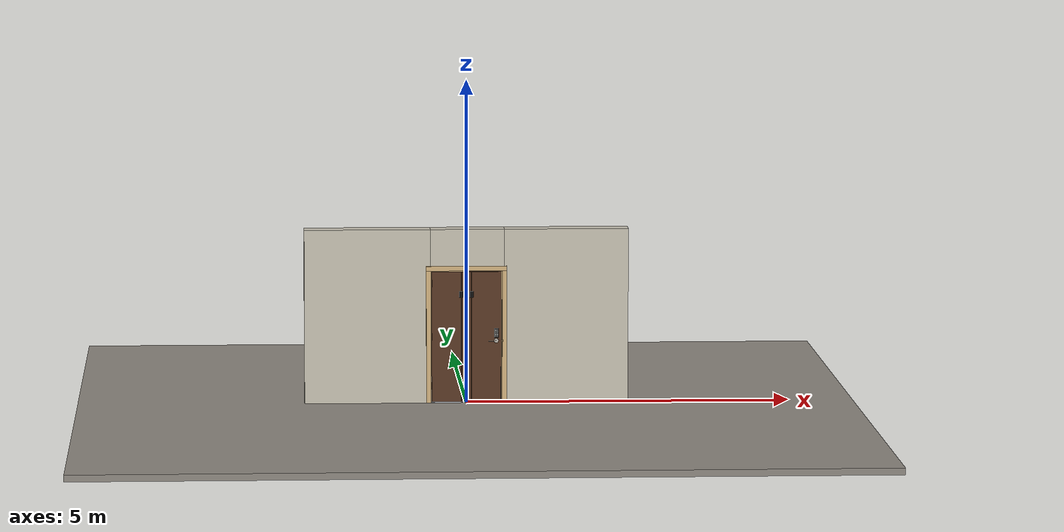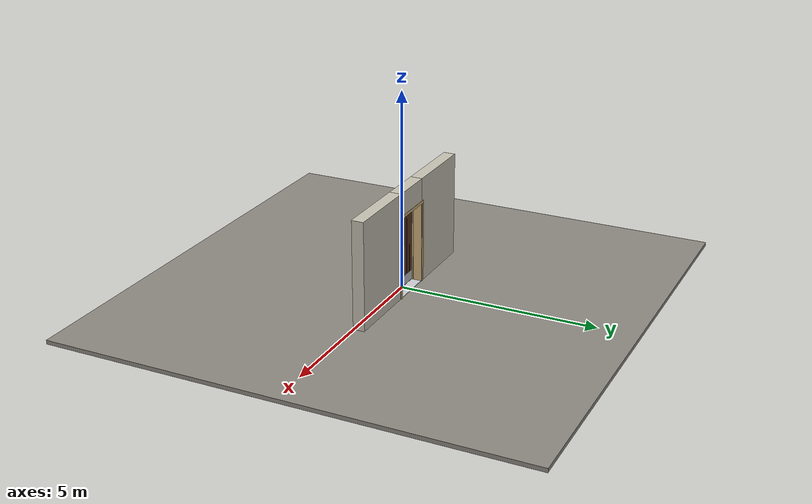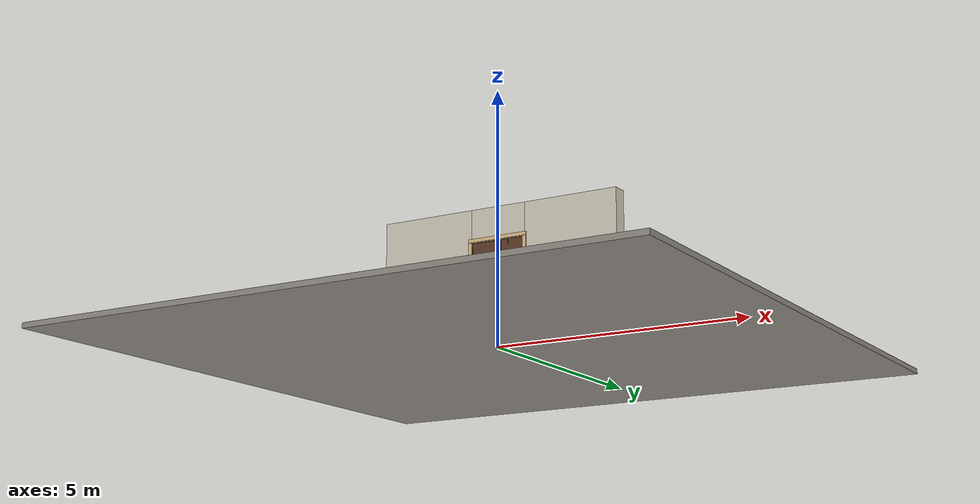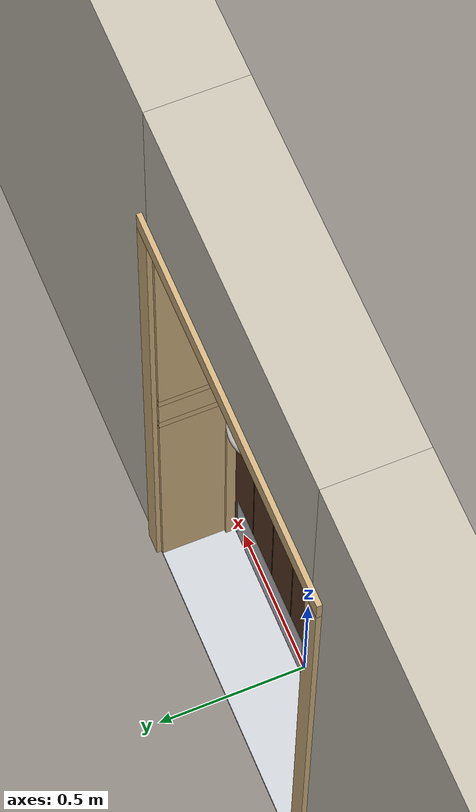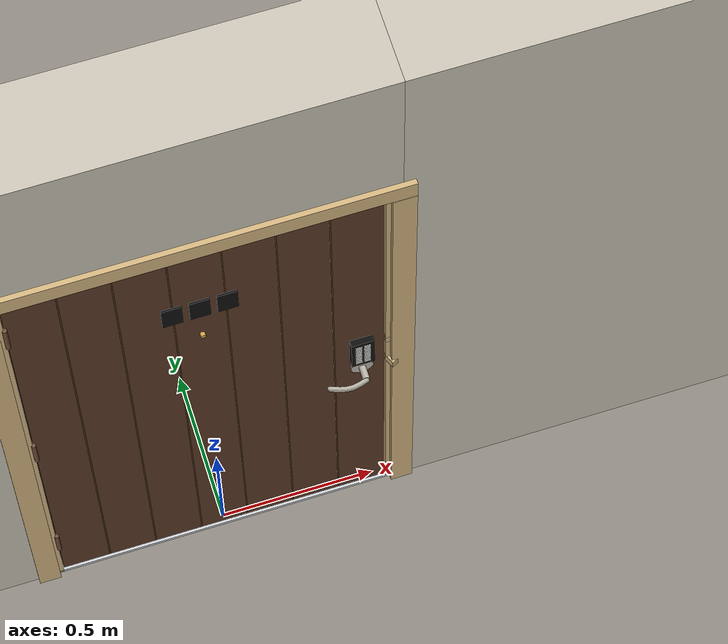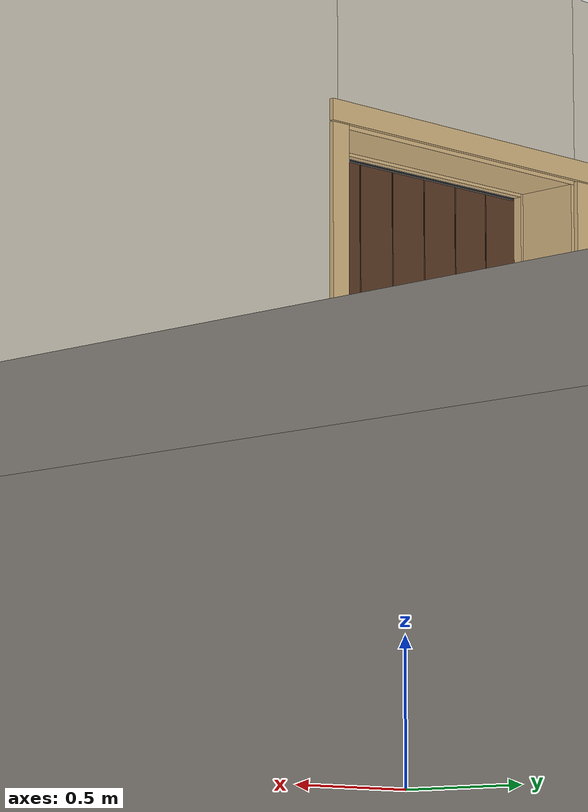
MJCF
<?xml version="1.0" ?>
<mujoco model="db0086_swing_single_full">
  <compiler angle="radian" meshdir="../../hardware" texturedir="../../textures" autolimits="true" inertiafromgeom="false"/>
  <option timestep="0.002" integrator="implicitfast" cone="elliptic" impratio="10" noslip_iterations="3">
    <flag multiccd="enable"/>
  </option>
  <size memory="16M"/>
  <default>
    <geom condim="4" solref="0.005 1" solimp="0.95 0.99 0.001"/>
    <joint solreflimit="0.005 1" solimplimit="0.95 0.99 0.001"/>
    <tendon solreflimit="0.005 1"/>
    <equality solref="0.002 1"/>
  </default>
  <visual>
    <headlight ambient="0.4 0.4 0.4" diffuse="0.7 0.7 0.7" specular="0.2 0.2 0.2"/>
    <quality shadowsize="4096"/>
    <map znear="0.01" zfar="60"/>
  </visual>
  <asset>
    <mesh name="hinge_e22b26c0c1" file="hinge_e22b26c0c1.obj"/>
    <mesh name="hinge_jamb_e1d088f8dc" file="hinge_jamb_e1d088f8dc.obj"/>
    <mesh name="house_numbers_ad0a8e8be0" file="house_numbers_ad0a8e8be0.obj"/>
    <mesh name="keypad_body_3b2d063948" file="keypad_body_3b2d063948.obj"/>
    <mesh name="lever_a61139b160" file="lever_a61139b160.obj"/>
    <mesh name="peephole_f829311a59" file="peephole_f829311a59.obj"/>
    <mesh name="thumbturn_eb5c9899a3" file="thumbturn_eb5c9899a3.obj"/>
    <material name="mat_floor" rgba="0.55 0.53 0.5 1" specular="0.2" shininess="0.15" reflectance="0"/>
    <material name="mat_wall" rgba="0.78 0.76 0.7 1" specular="0.2" shininess="0.1" reflectance="0"/>
    <material name="mat_leaf" rgba="0.35 0.22 0.14 1" specular="0.2" shininess="0.64" reflectance="0"/>
    <material name="mat_leaf_brace" rgba="0.315 0.198 0.126 1" specular="0.2" shininess="0.2" reflectance="0"/>
    <material name="mat_hinge" rgba="0.45 0.3 0.22 1" specular="0.5" shininess="0.1" reflectance="0.2"/>
    <material name="mat_op_nickel_satin" rgba="0.72 0.7 0.66 1" specular="0.8" shininess="0.65" reflectance="0.4"/>
    <material name="mat_trim" rgba="0.85 0.66 0.3 1" specular="0.8" shininess="0.75" reflectance="0.4"/>
    <material name="mat_keypad" rgba="0.05 0.05 0.05 1" specular="0.38" shininess="0.3" reflectance="0.12"/>
    <material name="mat_key" rgba="0.85 0.85 0.82 1" specular="0.2" shininess="0.5" reflectance="0"/>
    <material name="mat_bolt" rgba="0.85 0.66 0.3 1" specular="0.8" shininess="0.75" reflectance="0.4"/>
    <material name="mat_deadbolt" rgba="0.85 0.66 0.3 1" specular="0.8" shininess="0.75" reflectance="0.4"/>
    <material name="mat_frame" rgba="0.82 0.7 0.5 1" specular="0.2" shininess="0.45" reflectance="0"/>
    <material name="mat_seal" rgba="0.1 0.1 0.1 1" specular="0.2" shininess="0.1" reflectance="0"/>
    <material name="mat_threshold" rgba="0.8 0.81 0.83 1" specular="0.8" shininess="0.6" reflectance="0.4"/>
    <material name="mat_kick" rgba="0.75 0.76 0.77 1" specular="0.8" shininess="0.65" reflectance="0.4"/>
    <material name="mat_peephole" rgba="0.85 0.66 0.3 1" specular="0.8" shininess="0.75" reflectance="0.4"/>
    <material name="mat_numbers" rgba="0.05 0.05 0.05 1" specular="0.38" shininess="0.3" reflectance="0.12"/>
    <material name="mat_drip" rgba="0.8 0.81 0.83 1" specular="0.8" shininess="0.6" reflectance="0.4"/>
    <texture name="skybox" type="skybox" builtin="gradient" rgb1="0.6 0.7 0.85" rgb2="0.9 0.92 0.95" width="256" height="256"/>
  </asset>
  <worldbody>
    <light name="sun" pos="1.5 -2.5 4" dir="-0.3 0.5 -0.8" directional="true" diffuse="0.8 0.8 0.8" specular="0.3 0.3 0.3" castshadow="true"/>
    <light name="fill" pos="-1.5 2.5 3" dir="0.3 -0.5 -0.7" directional="true" diffuse="0.35 0.35 0.4" castshadow="false"/>
    <camera name="robot_view" pos="0 -2.421187 1.734312" xyaxes="1 0 0 0 0.26963 0.962964" fovy="52"/>
    <camera name="far_view" pos="0 2.663187 1.734312" xyaxes="-1 0 0 0 -0.26963 0.962964" fovy="52"/>
    <camera name="iso" pos="1.932062 -2.014438 2.141063" xyaxes="0.741536 0.670913 0 -0.242917 0.268487 0.932151" fovy="46"/>
    <camera name="detail_handle" pos="0.5534 -0.877 1.245" xyaxes="0.97561 0.219512 0 -0.070934 0.315262 0.94635" fovy="38"/>
    <geom name="floor" type="box" size="6 6 0.05" pos="0 0 -0.05" material="mat_floor" group="0" contype="1" conaffinity="1" friction="0.8 0.005 0.0001" density="2400"/>
    <geom name="wall_left" type="box" size="0.972 0.15 1.35" pos="-1.528 0.121 1.35" material="mat_wall" group="0" contype="1" conaffinity="1" friction="0.6 0.005 0.0001" density="800"/>
    <geom name="wall_right" type="box" size="0.957 0.15 1.35" pos="1.543 0.121 1.35" material="mat_wall" group="0" contype="1" conaffinity="1" friction="0.6 0.005 0.0001" density="800"/>
    <geom name="wall_header" type="box" size="0.571 0.15 0.303" pos="0.015 0.121 2.397" material="mat_wall" group="0" contype="1" conaffinity="1" friction="0.6 0.005 0.0001" density="800"/>
    <geom name="hinge_0_jamb" type="mesh" mesh="hinge_jamb_e1d088f8dc" pos="-0.534 -0.029 0.267" material="mat_hinge" group="1" contype="0" conaffinity="0" density="7850"/>
    <geom name="hinge_1_jamb" type="mesh" mesh="hinge_jamb_e1d088f8dc" pos="-0.534 -0.029 1.029" material="mat_hinge" group="1" contype="0" conaffinity="0" density="7850"/>
    <geom name="hinge_2_jamb" type="mesh" mesh="hinge_jamb_e1d088f8dc" pos="-0.534 -0.029 1.861" material="mat_hinge" group="1" contype="0" conaffinity="0" density="7850"/>
    <geom name="leaf_deadbolt_strike_b" type="box" size="0.0155 0.003 0.0005" pos="0.5365 0 1.0865" quat="-0.5 -0.5 0.5 0.5" material="mat_deadbolt" group="1" contype="0" conaffinity="0" density="7800"/>
    <geom name="leaf_deadbolt_strike_l" type="box" size="0.003 0.0155 0.0005" pos="0.5365 0.0125 1.105" quat="-0.5 -0.5 0.5 0.5" material="mat_deadbolt" group="1" contype="0" conaffinity="0" density="7800"/>
    <geom name="leaf_deadbolt_strike_t" type="box" size="0.0155 0.003 0.0005" pos="0.5365 0 1.1235" quat="-0.5 -0.5 0.5 0.5" material="mat_deadbolt" group="1" contype="0" conaffinity="0" density="7800"/>
    <geom name="leaf_deadbolt_strike_r" type="box" size="0.003 0.0155 0.0005" pos="0.5365 -0.0125 1.105" quat="-0.5 -0.5 0.5 0.5" material="mat_deadbolt" group="1" contype="0" conaffinity="0" density="7800"/>
    <geom name="jamb_hinge" type="box" size="0.0095 0.15 1.0225" pos="-0.5465 0.121 1.0225" material="mat_frame" group="0" contype="1" conaffinity="1" friction="0.6 0.005 0.0001" density="400"/>
    <geom name="strike_965_wall_n" type="box" size="0.0245 0.131575 0.0167" pos="0.5615 0.139425 0.965" material="mat_frame" group="0" contype="1" conaffinity="1" friction="0.6 0.005 0.0001" density="400"/>
    <geom name="strike_965_wall_p" type="box" size="0.0245 0.008 0.0167" pos="0.5615 -0.01585 0.965" material="mat_frame" group="0" contype="1" conaffinity="1" friction="0.6 0.005 0.0001" density="400"/>
    <geom name="strike_965_ramp" type="box" size="0.0245 0.01649 0.0167" pos="0.566136 -0.028673 0.965" quat="0.977148 0 0 0.212558" material="mat_frame" group="0" contype="1" conaffinity="1" friction="0.12 0.005 0.0001" density="400"/>
    <geom name="strike_965_back" type="box" size="0.01615 0.00785 0.0167" pos="0.56985 0 0.965" material="mat_frame" group="0" contype="1" conaffinity="1" friction="0.6 0.005 0.0001" density="400"/>
    <geom name="strike_1105_wall_n" type="box" size="0.0245 0.13075 0.0155" pos="0.5615 0.14025 1.105" material="mat_frame" group="0" contype="1" conaffinity="1" friction="0.6 0.005 0.0001" density="400"/>
    <geom name="strike_1105_wall_p" type="box" size="0.0245 0.00975 0.0155" pos="0.5615 -0.01925 1.105" material="mat_frame" group="0" contype="1" conaffinity="1" friction="0.6 0.005 0.0001" density="400"/>
    <geom name="strike_1105_back" type="box" size="0.0098 0.0095 0.0155" pos="0.5762 0 1.105" material="mat_frame" group="0" contype="1" conaffinity="1" friction="0.6 0.005 0.0001" density="400"/>
    <geom name="jamb_strike_0" type="box" size="0.0245 0.15 0.47415" pos="0.5615 0.121 0.47415" material="mat_frame" group="0" contype="1" conaffinity="1" friction="0.6 0.005 0.0001" density="400"/>
    <geom name="jamb_strike_1" type="box" size="0.0245 0.15 0.0539" pos="0.5615 0.121 1.0356" material="mat_frame" group="0" contype="1" conaffinity="1" friction="0.6 0.005 0.0001" density="400"/>
    <geom name="jamb_strike_2" type="box" size="0.0245 0.15 0.46225" pos="0.5615 0.121 1.58275" material="mat_frame" group="0" contype="1" conaffinity="1" friction="0.6 0.005 0.0001" density="400"/>
    <geom name="jamb_head" type="box" size="0.571 0.15 0.0095" pos="0.015 0.121 2.0545" material="mat_frame" group="0" contype="1" conaffinity="1" friction="0.6 0.005 0.0001" density="400"/>
    <geom name="head_stud" type="box" size="0.571 0.15 0.015" pos="0.015 0.121 2.079" material="mat_wall" group="0" contype="1" conaffinity="1" friction="0.6 0.005 0.0001" density="500"/>
    <geom name="stop_hinge" type="box" size="0.0055 0.016 1.0225" pos="-0.5315 0.0385 1.0225" material="mat_frame" group="0" contype="1" conaffinity="1" friction="0.6 0.005 0.0001" density="400"/>
    <geom name="stop_strike" type="box" size="0.0055 0.016 1.0225" pos="0.5315 0.0385 1.0225" material="mat_frame" group="0" contype="1" conaffinity="1" friction="0.6 0.005 0.0001" density="400"/>
    <geom name="stop_head" type="box" size="0.537 0.016 0.0055" pos="0 0.0385 2.0395" material="mat_frame" group="0" contype="1" conaffinity="1" friction="0.6 0.005 0.0001" density="400"/>
    <geom name="seal_hinge" type="box" size="0.004 0.003 1.0225" pos="-0.534 0.025 1.0225" material="mat_seal" group="1" contype="0" conaffinity="0" density="1100"/>
    <geom name="seal_strike" type="box" size="0.004 0.003 1.0225" pos="0.534 0.025 1.0225" material="mat_seal" group="1" contype="0" conaffinity="0" density="1100"/>
    <geom name="seal_head" type="box" size="0.517 0.003 0.008" pos="0 0.025 2.033" material="mat_seal" group="1" contype="0" conaffinity="0" density="1100"/>
    <geom name="casing_l_n" type="box" size="0.035 0.008 1.032" pos="-0.586 -0.037 1.0225" material="mat_frame" group="2" contype="0" conaffinity="0" density="400"/>
    <geom name="casing_r_n" type="box" size="0.035 0.008 1.032" pos="0.586 -0.037 1.0225" material="mat_frame" group="2" contype="0" conaffinity="0" density="400"/>
    <geom name="casing_h_n" type="box" size="0.621 0.008 0.035" pos="0 -0.037 2.094" material="mat_frame" group="2" contype="0" conaffinity="0" density="400"/>
    <geom name="casing_l_p" type="box" size="0.035 0.008 1.032" pos="-0.586 0.279 1.0225" material="mat_frame" group="2" contype="0" conaffinity="0" density="400"/>
    <geom name="casing_r_p" type="box" size="0.035 0.008 1.032" pos="0.586 0.279 1.0225" material="mat_frame" group="2" contype="0" conaffinity="0" density="400"/>
    <geom name="casing_h_p" type="box" size="0.621 0.008 0.035" pos="0 0.279 2.094" material="mat_frame" group="2" contype="0" conaffinity="0" density="400"/>
    <geom name="threshold" type="box" size="0.556 0.15 0.0065" pos="0 0.121 0.0065" material="mat_threshold" group="0" contype="1" conaffinity="1" friction="0.5 0.005 0.0001" density="2700"/>
    <geom name="weather_drip_cap" type="box" size="0.587 0.03 0.008" pos="0 0.03 2.09" material="mat_drip" group="2" contype="0" conaffinity="0" density="2700"/>
    <geom name="weather_drip_cap_bracket" type="box" size="0.1761 0.015 0.005" pos="0 -0.0145 2.09" material="mat_drip" group="2" contype="0" conaffinity="0" density="7850"/>
    <site name="approach_point" pos="0 -1.5 0" quat="1 0 0 0" size="0.05" rgba="0.2 0.9 0.2 0.5" group="4"/>
    <site name="goal_point" pos="0 1.5 0" quat="1 0 0 0" size="0.05" rgba="0.2 0.9 0.2 0.5" group="4"/>
    <site name="door_plane_center" pos="0 0 1.0225" quat="1 0 0 0" size="0.02" rgba="0.2 0.9 0.2 0.5" group="4"/>
    <body name="leaf" pos="-0.537 0 0">
      <inertial pos="0.530407 0.00148 0.936913" mass="28.057953" quat="0.501063 -0.498046 -0.499079 -0.501803" diaginertia="2.81069492 10.601801957 13.400652023"/>
      <joint name="leaf_hinge" type="hinge" axis="0 0 -1" pos="0.003 -0.029 0" limited="true" range="0 1.745329" solreflimit="0.02 1" damping="0.525663" frictionloss="13.18412" armature="0.02"/>
      <geom name="leaf_slab" type="box" size="0.5335 0.022 1.012" pos="0.5365 0 1.029" material="mat_leaf" group="0" contype="1" conaffinity="1" friction="0.4 0.005 0.0001" density="1"/>
      <geom name="leaf_plank_gap_1" type="box" size="0.002 0.023 1.002" pos="0.155429 0 1.029" material="mat_leaf_brace" group="1" contype="0" conaffinity="0" density="1"/>
      <geom name="leaf_plank_gap_2" type="box" size="0.002 0.023 1.002" pos="0.307857 0 1.029" material="mat_leaf_brace" group="1" contype="0" conaffinity="0" density="1"/>
      <geom name="leaf_plank_gap_3" type="box" size="0.002 0.023 1.002" pos="0.460286 0 1.029" material="mat_leaf_brace" group="1" contype="0" conaffinity="0" density="1"/>
      <geom name="leaf_plank_gap_4" type="box" size="0.002 0.023 1.002" pos="0.612714 0 1.029" material="mat_leaf_brace" group="1" contype="0" conaffinity="0" density="1"/>
      <geom name="leaf_plank_gap_5" type="box" size="0.002 0.023 1.002" pos="0.765143 0 1.029" material="mat_leaf_brace" group="1" contype="0" conaffinity="0" density="1"/>
      <geom name="leaf_plank_gap_6" type="box" size="0.002 0.023 1.002" pos="0.917571 0 1.029" material="mat_leaf_brace" group="1" contype="0" conaffinity="0" density="1"/>
      <geom name="hinge_0" type="mesh" mesh="hinge_e22b26c0c1" pos="0.003 -0.029 0.267" material="mat_hinge" group="1" contype="0" conaffinity="0" density="7850"/>
      <geom name="hinge_1" type="mesh" mesh="hinge_e22b26c0c1" pos="0.003 -0.029 1.029" material="mat_hinge" group="1" contype="0" conaffinity="0" density="7850"/>
      <geom name="hinge_2" type="mesh" mesh="hinge_e22b26c0c1" pos="0.003 -0.029 1.861" material="mat_hinge" group="1" contype="0" conaffinity="0" density="7850"/>
      <geom name="leaf_keypad_body" type="mesh" mesh="keypad_body_3b2d063948" pos="1 -0.022 1.085" quat="0.707107 0.707107 0 0" material="mat_keypad" group="0" contype="1" conaffinity="1" friction="0.6 0.005 0.0001" density="2000"/>
      <geom name="leaf_latch_bolt_faceplate" type="box" size="0.0006 0.01235 0.0267" pos="1.0694 0 0.965" material="mat_bolt" group="1" contype="0" conaffinity="0" density="8500"/>
      <geom name="leaf_deadbolt_faceplate" type="box" size="0.0006 0.014 0.0245" pos="1.0694 0 1.105" material="mat_deadbolt" group="1" contype="0" conaffinity="0" density="8500"/>
      <geom name="kick_plate_p" type="box" size="0.5035 0.0008 0.125" pos="0.5365 0.0228 0.152" material="mat_kick" group="2" contype="0" conaffinity="0" density="7900"/>
      <geom name="peephole" type="mesh" mesh="peephole_f829311a59" pos="0.5365 -0.022 1.517" quat="0.707107 0.707107 0 0" material="mat_peephole" group="2" contype="0" conaffinity="0" density="8500"/>
      <geom name="house_numbers" type="mesh" mesh="house_numbers_ad0a8e8be0" pos="0.5365 -0.022 1.691" quat="0.707107 0.707107 0 0" material="mat_numbers" group="2" contype="0" conaffinity="0" density="1000"/>
      <site name="leaf_edge_mid" pos="1.07 0 1.012" quat="1 0 0 0" size="0.02" rgba="0.2 0.9 0.2 0.5" group="4"/>
      <body name="leaf_handle" pos="1 0 0.965">
        <inertial pos="-0.023482 0 0" mass="0.873269" quat="0.707107 0 0 -0.707107" diaginertia="0.001231078 0.003255488 0.004320455"/>
        <joint name="leaf_handle_hinge" type="hinge" axis="0 -1 0" limited="true" range="0 0.87" damping="0.216449" frictionloss="0.043602" stiffness="1" springref="-0.375569" armature="0.01"/>
        <geom name="leaf_handle_spindle" type="cylinder" size="0.006 0.03" pos="0 0 0" quat="0.707107 -0.707107 0 0" material="mat_op_nickel_satin" group="1" contype="0" conaffinity="0" density="7850"/>
        <geom name="leaf_handle_lever_n" type="mesh" mesh="lever_a61139b160" pos="0 -0.022 0" quat="0.707107 0.707107 0 0" material="mat_op_nickel_satin" group="1" contype="0" conaffinity="0" density="3000"/>
        <geom name="leaf_handle_lever_col_n" type="capsule" size="0.008 0.048" pos="-0.056 -0.077 0" quat="0.707107 0 -0.707107 0" material="mat_op_nickel_satin" group="3" contype="1" conaffinity="1" rgba="0.8 0.3 0.3 0.25" friction="0.7 0.01 0.0001" density="3000"/>
        <geom name="leaf_handle_hub_col_n" type="cylinder" size="0.012 0.022" pos="0 -0.052 0" quat="0.707107 -0.707107 0 0" material="mat_op_nickel_satin" group="3" contype="1" conaffinity="1" rgba="0.8 0.3 0.3 0.25" friction="0.6 0.005 0.0001" density="3000"/>
        <geom name="leaf_handle_lever_p" type="mesh" mesh="lever_a61139b160" pos="0 0.022 0" quat="-0.707107 0.707107 0 0" material="mat_op_nickel_satin" group="1" contype="0" conaffinity="0" density="3000"/>
        <geom name="leaf_handle_lever_col_p" type="capsule" size="0.008 0.048" pos="-0.056 0.077 0" quat="0.707107 0 -0.707107 0" material="mat_op_nickel_satin" group="3" contype="1" conaffinity="1" rgba="0.8 0.3 0.3 0.25" friction="0.7 0.01 0.0001" density="3000"/>
        <geom name="leaf_handle_hub_col_p" type="cylinder" size="0.012 0.022" pos="0 0.052 0" quat="0.707107 -0.707107 0 0" material="mat_op_nickel_satin" group="3" contype="1" conaffinity="1" rgba="0.8 0.3 0.3 0.25" friction="0.6 0.005 0.0001" density="3000"/>
        <site name="leaf_handle_grip_n" pos="-0.0896 -0.077 0" quat="1 0 0 0" size="0.012" rgba="0.2 0.9 0.2 0.5" group="4"/>
        <site name="leaf_handle_grip_p" pos="-0.0896 0.077 0" quat="1 0 0 0" size="0.012" rgba="0.2 0.9 0.2 0.5" group="4"/>
      </body>
      <body name="leaf_keypad_key_1" pos="0.987 -0.042 1.133">
        <inertial pos="0 -0.0015 0" mass="0.001008" quat="0 0 0.707107 0.707107" diaginertia="0.000000017 0.000000034 0.00000005"/>
        <joint name="leaf_keypad_key_1_slide" type="slide" axis="0 1 0" limited="true" range="0 0.0015" damping="14" frictionloss="0.05" stiffness="1000" springref="-0.0015" armature="0.1"/>
        <geom name="leaf_keypad_key_1_geom" type="box" size="0.01 0.0015 0.007" pos="0 -0.0015 0" material="mat_key" group="0" contype="1" conaffinity="1" friction="0.6 0.005 0.0001" density="1200"/>
        <site name="leaf_keypad_key_1_press" pos="0 -0.005 0" quat="1 0 0 0" size="0.008" rgba="0.2 0.9 0.2 0.5" group="4"/>
      </body>
      <body name="leaf_keypad_key_2" pos="1.013 -0.042 1.133">
        <inertial pos="0 -0.0015 0" mass="0.001008" quat="0 0 0.707107 0.707107" diaginertia="0.000000017 0.000000034 0.00000005"/>
        <joint name="leaf_keypad_key_2_slide" type="slide" axis="0 1 0" limited="true" range="0 0.0015" damping="14" frictionloss="0.05" stiffness="1000" springref="-0.0015" armature="0.1"/>
        <geom name="leaf_keypad_key_2_geom" type="box" size="0.01 0.0015 0.007" pos="0 -0.0015 0" material="mat_key" group="0" contype="1" conaffinity="1" friction="0.6 0.005 0.0001" density="1200"/>
        <site name="leaf_keypad_key_2_press" pos="0 -0.005 0" quat="1 0 0 0" size="0.008" rgba="0.2 0.9 0.2 0.5" group="4"/>
      </body>
      <body name="leaf_keypad_key_3" pos="0.987 -0.042 1.109">
        <inertial pos="0 -0.0015 0" mass="0.001008" quat="0 0 0.707107 0.707107" diaginertia="0.000000017 0.000000034 0.00000005"/>
        <joint name="leaf_keypad_key_3_slide" type="slide" axis="0 1 0" limited="true" range="0 0.0015" damping="14" frictionloss="0.05" stiffness="1000" springref="-0.0015" armature="0.1"/>
        <geom name="leaf_keypad_key_3_geom" type="box" size="0.01 0.0015 0.007" pos="0 -0.0015 0" material="mat_key" group="0" contype="1" conaffinity="1" friction="0.6 0.005 0.0001" density="1200"/>
        <site name="leaf_keypad_key_3_press" pos="0 -0.005 0" quat="1 0 0 0" size="0.008" rgba="0.2 0.9 0.2 0.5" group="4"/>
      </body>
      <body name="leaf_keypad_key_4" pos="1.013 -0.042 1.109">
        <inertial pos="0 -0.0015 0" mass="0.001008" quat="0 0 0.707107 0.707107" diaginertia="0.000000017 0.000000034 0.00000005"/>
        <joint name="leaf_keypad_key_4_slide" type="slide" axis="0 1 0" limited="true" range="0 0.0015" damping="14" frictionloss="0.05" stiffness="1000" springref="-0.0015" armature="0.1"/>
        <geom name="leaf_keypad_key_4_geom" type="box" size="0.01 0.0015 0.007" pos="0 -0.0015 0" material="mat_key" group="0" contype="1" conaffinity="1" friction="0.6 0.005 0.0001" density="1200"/>
        <site name="leaf_keypad_key_4_press" pos="0 -0.005 0" quat="1 0 0 0" size="0.008" rgba="0.2 0.9 0.2 0.5" group="4"/>
      </body>
      <body name="leaf_keypad_key_5" pos="0.987 -0.042 1.085">
        <inertial pos="0 -0.0015 0" mass="0.001008" quat="0 0 0.707107 0.707107" diaginertia="0.000000017 0.000000034 0.00000005"/>
        <joint name="leaf_keypad_key_5_slide" type="slide" axis="0 1 0" limited="true" range="0 0.0015" damping="14" frictionloss="0.05" stiffness="1000" springref="-0.0015" armature="0.1"/>
        <geom name="leaf_keypad_key_5_geom" type="box" size="0.01 0.0015 0.007" pos="0 -0.0015 0" material="mat_key" group="0" contype="1" conaffinity="1" friction="0.6 0.005 0.0001" density="1200"/>
        <site name="leaf_keypad_key_5_press" pos="0 -0.005 0" quat="1 0 0 0" size="0.008" rgba="0.2 0.9 0.2 0.5" group="4"/>
      </body>
      <body name="leaf_keypad_key_6" pos="1.013 -0.042 1.085">
        <inertial pos="0 -0.0015 0" mass="0.001008" quat="0 0 0.707107 0.707107" diaginertia="0.000000017 0.000000034 0.00000005"/>
        <joint name="leaf_keypad_key_6_slide" type="slide" axis="0 1 0" limited="true" range="0 0.0015" damping="14" frictionloss="0.05" stiffness="1000" springref="-0.0015" armature="0.1"/>
        <geom name="leaf_keypad_key_6_geom" type="box" size="0.01 0.0015 0.007" pos="0 -0.0015 0" material="mat_key" group="0" contype="1" conaffinity="1" friction="0.6 0.005 0.0001" density="1200"/>
        <site name="leaf_keypad_key_6_press" pos="0 -0.005 0" quat="1 0 0 0" size="0.008" rgba="0.2 0.9 0.2 0.5" group="4"/>
      </body>
      <body name="leaf_keypad_key_7" pos="0.987 -0.042 1.061">
        <inertial pos="0 -0.0015 0" mass="0.001008" quat="0 0 0.707107 0.707107" diaginertia="0.000000017 0.000000034 0.00000005"/>
        <joint name="leaf_keypad_key_7_slide" type="slide" axis="0 1 0" limited="true" range="0 0.0015" damping="14" frictionloss="0.05" stiffness="1000" springref="-0.0015" armature="0.1"/>
        <geom name="leaf_keypad_key_7_geom" type="box" size="0.01 0.0015 0.007" pos="0 -0.0015 0" material="mat_key" group="0" contype="1" conaffinity="1" friction="0.6 0.005 0.0001" density="1200"/>
        <site name="leaf_keypad_key_7_press" pos="0 -0.005 0" quat="1 0 0 0" size="0.008" rgba="0.2 0.9 0.2 0.5" group="4"/>
      </body>
      <body name="leaf_keypad_key_8" pos="1.013 -0.042 1.061">
        <inertial pos="0 -0.0015 0" mass="0.001008" quat="0 0 0.707107 0.707107" diaginertia="0.000000017 0.000000034 0.00000005"/>
        <joint name="leaf_keypad_key_8_slide" type="slide" axis="0 1 0" limited="true" range="0 0.0015" damping="14" frictionloss="0.05" stiffness="1000" springref="-0.0015" armature="0.1"/>
        <geom name="leaf_keypad_key_8_geom" type="box" size="0.01 0.0015 0.007" pos="0 -0.0015 0" material="mat_key" group="0" contype="1" conaffinity="1" friction="0.6 0.005 0.0001" density="1200"/>
        <site name="leaf_keypad_key_8_press" pos="0 -0.005 0" quat="1 0 0 0" size="0.008" rgba="0.2 0.9 0.2 0.5" group="4"/>
      </body>
      <body name="leaf_keypad_key_9" pos="0.987 -0.042 1.037">
        <inertial pos="0 -0.0015 0" mass="0.001008" quat="0 0 0.707107 0.707107" diaginertia="0.000000017 0.000000034 0.00000005"/>
        <joint name="leaf_keypad_key_9_slide" type="slide" axis="0 1 0" limited="true" range="0 0.0015" damping="14" frictionloss="0.05" stiffness="1000" springref="-0.0015" armature="0.1"/>
        <geom name="leaf_keypad_key_9_geom" type="box" size="0.01 0.0015 0.007" pos="0 -0.0015 0" material="mat_key" group="0" contype="1" conaffinity="1" friction="0.6 0.005 0.0001" density="1200"/>
        <site name="leaf_keypad_key_9_press" pos="0 -0.005 0" quat="1 0 0 0" size="0.008" rgba="0.2 0.9 0.2 0.5" group="4"/>
      </body>
      <body name="leaf_keypad_key_0" pos="1.013 -0.042 1.037">
        <inertial pos="0 -0.0015 0" mass="0.001008" quat="0 0 0.707107 0.707107" diaginertia="0.000000017 0.000000034 0.00000005"/>
        <joint name="leaf_keypad_key_0_slide" type="slide" axis="0 1 0" limited="true" range="0 0.0015" damping="14" frictionloss="0.05" stiffness="1000" springref="-0.0015" armature="0.1"/>
        <geom name="leaf_keypad_key_0_geom" type="box" size="0.01 0.0015 0.007" pos="0 -0.0015 0" material="mat_key" group="0" contype="1" conaffinity="1" friction="0.6 0.005 0.0001" density="1200"/>
        <site name="leaf_keypad_key_0_press" pos="0 -0.005 0" quat="1 0 0 0" size="0.008" rgba="0.2 0.9 0.2 0.5" group="4"/>
      </body>
      <body name="leaf_latch_bolt" pos="1.07 0 0.965">
        <inertial pos="-0.00865 0 0" mass="0.041419" quat="0.92388 -0.382683 0 0" diaginertia="0.000000798 0.000005598 0.000005598"/>
        <joint name="leaf_latch_bolt_slide" type="slide" axis="-1 0 0" limited="true" range="0 0.0127" damping="2" frictionloss="0.3" stiffness="300" springref="-0.008333" armature="0.1"/>
        <geom name="leaf_latch_bolt_capsule" type="capsule" size="0.00635 0.015" pos="-0.00865 0 0" quat="0.707107 0 0.707107 0" material="mat_bolt" group="0" contype="1" conaffinity="1" friction="0.2 0.005 0.0001" density="8500"/>
      </body>
      <body name="leaf_deadbolt" pos="1.07 0 1.105">
        <inertial pos="-0.0023 0 0" mass="0.18836" quat="0 0 0.707107 0.707107" diaginertia="0.000013829 0.000052194 0.000057986"/>
        <joint name="leaf_deadbolt_slide" type="slide" axis="-1 0 0" limited="true" range="0 0.0254" damping="5" frictionloss="1.5" armature="0.1"/>
        <geom name="leaf_deadbolt_box" type="box" size="0.0277 0.008 0.0125" pos="-0.0023 0 0" material="mat_deadbolt" group="0" contype="1" conaffinity="1" friction="0.3 0.005 0.0001" density="8500"/>
      </body>
      <body name="leaf_deadbolt_thumbturn" pos="1.005 0.022 1.105">
        <inertial pos="0 0.012928 0" mass="0.178946" quat="-0.5 0.5 -0.5 0.5" diaginertia="0.000026045 0.000026215 0.000032438"/>
        <joint name="leaf_deadbolt_thumbturn_hinge" type="hinge" axis="0 -1 0" limited="true" range="0 1.5708" damping="0.05" frictionloss="0.3" armature="0.005"/>
        <geom name="leaf_deadbolt_thumbturn_mesh" type="mesh" mesh="thumbturn_eb5c9899a3" pos="0 0 0" quat="-0.707107 0.707107 0 0" material="mat_deadbolt" group="0" contype="1" conaffinity="1" friction="0.6 0.005 0.0001" density="7100"/>
        <geom name="leaf_deadbolt_thumbturn_col" type="box" size="0.006 0.012 0.016" pos="0 0.02 0" material="mat_deadbolt" group="3" contype="1" conaffinity="1" rgba="0.8 0.3 0.3 0.25" friction="0.6 0.005 0.0001" density="7100"/>
      </body>
    </body>
  </worldbody>
  <tendon>
    <fixed name="leaf_latch_bolt_coupling" limited="true" range="0 10">
      <joint joint="leaf_latch_bolt_slide" coef="1"/>
      <joint joint="leaf_handle_hinge" coef="-0.015679"/>
    </fixed>
  </tendon>
  <equality>
    <joint name="leaf_deadbolt_couple" joint1="leaf_deadbolt_slide" joint2="leaf_deadbolt_thumbturn_hinge" polycoef="0 0.01617 0 0 0" active="true"/>
  </equality>
  <contact>
    <exclude body1="leaf_deadbolt" body2="leaf_deadbolt_thumbturn"/>
  </contact>
  <sensor>
    <jointpos name="leaf_hinge_pos" joint="leaf_hinge"/>
    <jointvel name="leaf_hinge_vel" joint="leaf_hinge"/>
    <jointpos name="leaf_handle_hinge_pos" joint="leaf_handle_hinge"/>
    <jointvel name="leaf_handle_hinge_vel" joint="leaf_handle_hinge"/>
    <jointpos name="leaf_keypad_key_1_slide_pos" joint="leaf_keypad_key_1_slide"/>
    <jointvel name="leaf_keypad_key_1_slide_vel" joint="leaf_keypad_key_1_slide"/>
    <jointpos name="leaf_keypad_key_2_slide_pos" joint="leaf_keypad_key_2_slide"/>
    <jointvel name="leaf_keypad_key_2_slide_vel" joint="leaf_keypad_key_2_slide"/>
    <jointpos name="leaf_keypad_key_3_slide_pos" joint="leaf_keypad_key_3_slide"/>
    <jointvel name="leaf_keypad_key_3_slide_vel" joint="leaf_keypad_key_3_slide"/>
    <jointpos name="leaf_keypad_key_4_slide_pos" joint="leaf_keypad_key_4_slide"/>
    <jointvel name="leaf_keypad_key_4_slide_vel" joint="leaf_keypad_key_4_slide"/>
    <jointpos name="leaf_keypad_key_5_slide_pos" joint="leaf_keypad_key_5_slide"/>
    <jointvel name="leaf_keypad_key_5_slide_vel" joint="leaf_keypad_key_5_slide"/>
    <jointpos name="leaf_keypad_key_6_slide_pos" joint="leaf_keypad_key_6_slide"/>
    <jointvel name="leaf_keypad_key_6_slide_vel" joint="leaf_keypad_key_6_slide"/>
    <jointpos name="leaf_keypad_key_7_slide_pos" joint="leaf_keypad_key_7_slide"/>
    <jointvel name="leaf_keypad_key_7_slide_vel" joint="leaf_keypad_key_7_slide"/>
    <jointpos name="leaf_keypad_key_8_slide_pos" joint="leaf_keypad_key_8_slide"/>
    <jointvel name="leaf_keypad_key_8_slide_vel" joint="leaf_keypad_key_8_slide"/>
    <jointpos name="leaf_keypad_key_9_slide_pos" joint="leaf_keypad_key_9_slide"/>
    <jointvel name="leaf_keypad_key_9_slide_vel" joint="leaf_keypad_key_9_slide"/>
    <jointpos name="leaf_keypad_key_0_slide_pos" joint="leaf_keypad_key_0_slide"/>
    <jointvel name="leaf_keypad_key_0_slide_vel" joint="leaf_keypad_key_0_slide"/>
    <jointpos name="leaf_latch_bolt_slide_pos" joint="leaf_latch_bolt_slide"/>
    <jointvel name="leaf_latch_bolt_slide_vel" joint="leaf_latch_bolt_slide"/>
    <jointpos name="leaf_deadbolt_slide_pos" joint="leaf_deadbolt_slide"/>
    <jointvel name="leaf_deadbolt_slide_vel" joint="leaf_deadbolt_slide"/>
    <jointpos name="leaf_deadbolt_thumbturn_hinge_pos" joint="leaf_deadbolt_thumbturn_hinge"/>
    <jointvel name="leaf_deadbolt_thumbturn_hinge_vel" joint="leaf_deadbolt_thumbturn_hinge"/>
  </sensor>
</mujoco>
